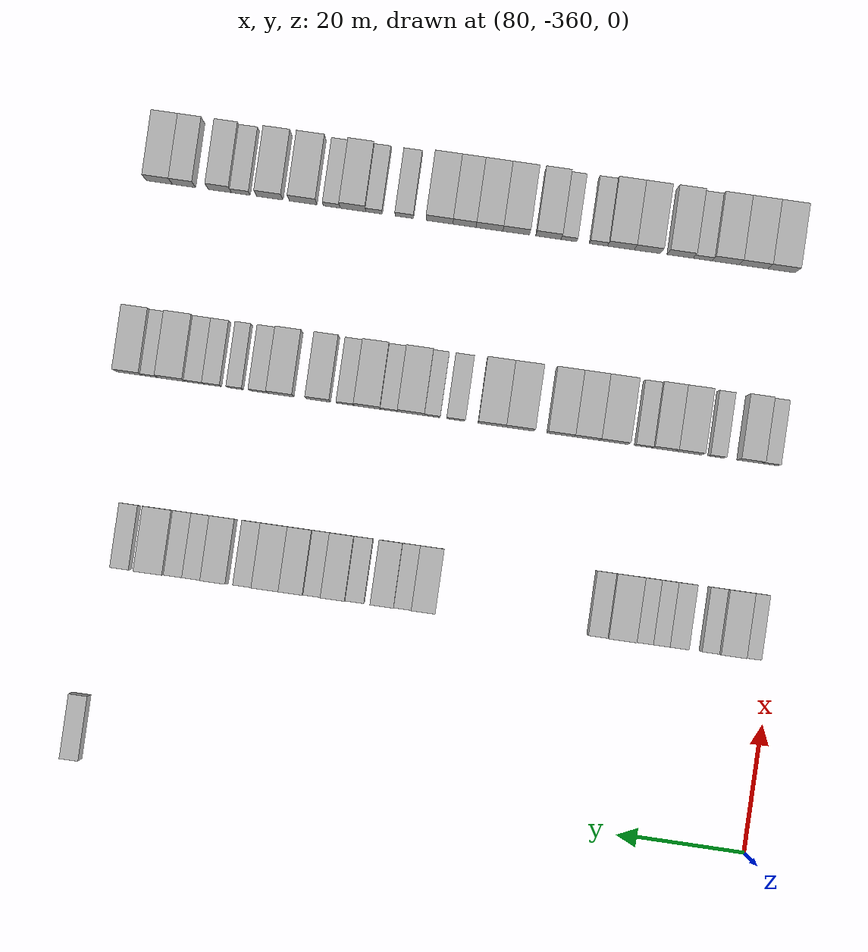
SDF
<sdf version="1.6">
 <world name="default">
  <model name="building_489">
   <static>1</static>
   <pose>85.0000 -255.1057 0 0.000000 0.000000 0.000000</pose>
   <link name="link">
    <pose>0 0 3.00 0 0 0</pose>
    <collision name="collision"><geometry><box><size>10.0000 2.9078 6.0000</size></box></geometry></collision>
    <visual name="visual">
     <cast_shadows>0</cast_shadows>
     <geometry><box><size>10.0000 2.9078 6.0000</size></box></geometry>
     <material>
      <script>
       <uri>model://HANNAS_wall/materials/scripts</uri>
       <uri>model://HANNAS_wall/materials/textures</uri>
       <name>vrc/HANNAS_wall</name>
      </script>
     </material>
    </visual>
   </link>
  </model>
  <model name="building_690">
   <static>1</static>
   <pose>115.0000 -356.5773 0 0.000000 0.000000 0.000000</pose>
   <link name="link">
    <pose>0 0 3.00 0 0 0</pose>
    <collision name="collision"><geometry><box><size>10.0000 2.5472 6.0000</size></box></geometry></collision>
    <visual name="visual">
     <cast_shadows>0</cast_shadows>
     <geometry><box><size>10.0000 2.5472 6.0000</size></box></geometry>
     <material>
      <script>
       <uri>model://HANNAS_wall/materials/scripts</uri>
       <uri>model://HANNAS_wall/materials/textures</uri>
       <name>vrc/HANNAS_wall</name>
      </script>
     </material>
    </visual>
   </link>
  </model>
  <model name="building_691">
   <static>1</static>
   <pose>115.0000 -353.3282 0 0.000000 0.000000 0.000000</pose>
   <link name="link">
    <pose>0 0 4.50 0 0 0</pose>
    <collision name="collision"><geometry><box><size>10.0000 3.9512 9.0000</size></box></geometry></collision>
    <visual name="visual">
     <cast_shadows>0</cast_shadows>
     <geometry><box><size>10.0000 3.9512 9.0000</size></box></geometry>
     <material>
      <script>
       <uri>model://HANNAS_wall/materials/scripts</uri>
       <uri>model://HANNAS_wall/materials/textures</uri>
       <name>vrc/HANNAS_wall</name>
      </script>
     </material>
    </visual>
   </link>
  </model>
  <model name="building_692">
   <static>1</static>
   <pose>115.0000 -350.0030 0 0.000000 0.000000 0.000000</pose>
   <link name="link">
    <pose>0 0 3.00 0 0 0</pose>
    <collision name="collision"><geometry><box><size>10.0000 2.6991 6.0000</size></box></geometry></collision>
    <visual name="visual">
     <cast_shadows>0</cast_shadows>
     <geometry><box><size>10.0000 2.6991 6.0000</size></box></geometry>
     <material>
      <script>
       <uri>model://HANNAS_wall/materials/scripts</uri>
       <uri>model://HANNAS_wall/materials/textures</uri>
       <name>vrc/HANNAS_wall</name>
      </script>
     </material>
    </visual>
   </link>
  </model>
  <model name="building_693">
   <static>1</static>
   <pose>115.0000 -345.1773 0 0.000000 0.000000 0.000000</pose>
   <link name="link">
    <pose>0 0 3.00 0 0 0</pose>
    <collision name="collision"><geometry><box><size>10.0000 2.9523 6.0000</size></box></geometry></collision>
    <visual name="visual">
     <cast_shadows>0</cast_shadows>
     <geometry><box><size>10.0000 2.9523 6.0000</size></box></geometry>
     <material>
      <script>
       <uri>model://HANNAS_wall/materials/scripts</uri>
       <uri>model://HANNAS_wall/materials/textures</uri>
       <name>vrc/HANNAS_wall</name>
      </script>
     </material>
    </visual>
   </link>
  </model>
  <model name="building_694">
   <static>1</static>
   <pose>115.0000 -342.4161 0 0.000000 0.000000 0.000000</pose>
   <link name="link">
    <pose>0 0 3.00 0 0 0</pose>
    <collision name="collision"><geometry><box><size>10.0000 2.5703 6.0000</size></box></geometry></collision>
    <visual name="visual">
     <cast_shadows>0</cast_shadows>
     <geometry><box><size>10.0000 2.5703 6.0000</size></box></geometry>
     <material>
      <script>
       <uri>model://HANNAS_wall/materials/scripts</uri>
       <uri>model://HANNAS_wall/materials/textures</uri>
       <name>vrc/HANNAS_wall</name>
      </script>
     </material>
    </visual>
   </link>
  </model>
  <model name="building_695">
   <static>1</static>
   <pose>115.0000 -339.7714 0 0.000000 0.000000 0.000000</pose>
   <link name="link">
    <pose>0 0 3.00 0 0 0</pose>
    <collision name="collision"><geometry><box><size>10.0000 2.7191 6.0000</size></box></geometry></collision>
    <visual name="visual">
     <cast_shadows>0</cast_shadows>
     <geometry><box><size>10.0000 2.7191 6.0000</size></box></geometry>
     <material>
      <script>
       <uri>model://HANNAS_wall/materials/scripts</uri>
       <uri>model://HANNAS_wall/materials/textures</uri>
       <name>vrc/HANNAS_wall</name>
      </script>
     </material>
    </visual>
   </link>
  </model>
  <model name="building_696">
   <static>1</static>
   <pose>115.0000 -336.2585 0 0.000000 0.000000 0.000000</pose>
   <link name="link">
    <pose>0 0 4.50 0 0 0</pose>
    <collision name="collision"><geometry><box><size>10.0000 4.3065 9.0000</size></box></geometry></collision>
    <visual name="visual">
     <cast_shadows>0</cast_shadows>
     <geometry><box><size>10.0000 4.3065 9.0000</size></box></geometry>
     <material>
      <script>
       <uri>model://HANNAS_wall/materials/scripts</uri>
       <uri>model://HANNAS_wall/materials/textures</uri>
       <name>vrc/HANNAS_wall</name>
      </script>
     </material>
    </visual>
   </link>
  </model>
  <model name="building_697">
   <static>1</static>
   <pose>115.0000 -332.6063 0 0.000000 0.000000 0.000000</pose>
   <link name="link">
    <pose>0 0 3.00 0 0 0</pose>
    <collision name="collision"><geometry><box><size>10.0000 2.9979 6.0000</size></box></geometry></collision>
    <visual name="visual">
     <cast_shadows>0</cast_shadows>
     <geometry><box><size>10.0000 2.9979 6.0000</size></box></geometry>
     <material>
      <script>
       <uri>model://HANNAS_wall/materials/scripts</uri>
       <uri>model://HANNAS_wall/materials/textures</uri>
       <name>vrc/HANNAS_wall</name>
      </script>
     </material>
    </visual>
   </link>
  </model>
  <model name="building_698">
   <static>1</static>
   <pose>115.0000 -305.5811 0 0.000000 0.000000 0.000000</pose>
   <link name="link">
    <pose>0 0 4.50 0 0 0</pose>
    <collision name="collision"><geometry><box><size>10.0000 3.6842 9.0000</size></box></geometry></collision>
    <visual name="visual">
     <cast_shadows>0</cast_shadows>
     <geometry><box><size>10.0000 3.6842 9.0000</size></box></geometry>
     <material>
      <script>
       <uri>model://HANNAS_wall/materials/scripts</uri>
       <uri>model://HANNAS_wall/materials/textures</uri>
       <name>vrc/HANNAS_wall</name>
      </script>
     </material>
    </visual>
   </link>
  </model>
  <model name="building_699">
   <static>1</static>
   <pose>115.0000 -302.3738 0 0.000000 0.000000 0.000000</pose>
   <link name="link">
    <pose>0 0 3.00 0 0 0</pose>
    <collision name="collision"><geometry><box><size>10.0000 2.7304 6.0000</size></box></geometry></collision>
    <visual name="visual">
     <cast_shadows>0</cast_shadows>
     <geometry><box><size>10.0000 2.7304 6.0000</size></box></geometry>
     <material>
      <script>
       <uri>model://HANNAS_wall/materials/scripts</uri>
       <uri>model://HANNAS_wall/materials/textures</uri>
       <name>vrc/HANNAS_wall</name>
      </script>
     </material>
    </visual>
   </link>
  </model>
  <model name="building_700">
   <static>1</static>
   <pose>115.0000 -299.2019 0 0.000000 0.000000 0.000000</pose>
   <link name="link">
    <pose>0 0 4.50 0 0 0</pose>
    <collision name="collision"><geometry><box><size>10.0000 3.6134 9.0000</size></box></geometry></collision>
    <visual name="visual">
     <cast_shadows>0</cast_shadows>
     <geometry><box><size>10.0000 3.6134 9.0000</size></box></geometry>
     <material>
      <script>
       <uri>model://HANNAS_wall/materials/scripts</uri>
       <uri>model://HANNAS_wall/materials/textures</uri>
       <name>vrc/HANNAS_wall</name>
      </script>
     </material>
    </visual>
   </link>
  </model>
  <model name="building_701">
   <static>1</static>
   <pose>115.0000 -294.9457 0 0.000000 0.000000 0.000000</pose>
   <link name="link">
    <pose>0 0 3.00 0 0 0</pose>
    <collision name="collision"><geometry><box><size>10.0000 2.8990 6.0000</size></box></geometry></collision>
    <visual name="visual">
     <cast_shadows>0</cast_shadows>
     <geometry><box><size>10.0000 2.8990 6.0000</size></box></geometry>
     <material>
      <script>
       <uri>model://HANNAS_wall/materials/scripts</uri>
       <uri>model://HANNAS_wall/materials/textures</uri>
       <name>vrc/HANNAS_wall</name>
      </script>
     </material>
    </visual>
   </link>
  </model>
  <model name="building_702">
   <static>1</static>
   <pose>115.0000 -291.6251 0 0.000000 0.000000 0.000000</pose>
   <link name="link">
    <pose>0 0 4.50 0 0 0</pose>
    <collision name="collision"><geometry><box><size>10.0000 3.7424 9.0000</size></box></geometry></collision>
    <visual name="visual">
     <cast_shadows>0</cast_shadows>
     <geometry><box><size>10.0000 3.7424 9.0000</size></box></geometry>
     <material>
      <script>
       <uri>model://HANNAS_wall/materials/scripts</uri>
       <uri>model://HANNAS_wall/materials/textures</uri>
       <name>vrc/HANNAS_wall</name>
      </script>
     </material>
    </visual>
   </link>
  </model>
  <model name="building_703">
   <static>1</static>
   <pose>115.0000 -288.3801 0 0.000000 0.000000 0.000000</pose>
   <link name="link">
    <pose>0 0 3.00 0 0 0</pose>
    <collision name="collision"><geometry><box><size>10.0000 2.7475 6.0000</size></box></geometry></collision>
    <visual name="visual">
     <cast_shadows>0</cast_shadows>
     <geometry><box><size>10.0000 2.7475 6.0000</size></box></geometry>
     <material>
      <script>
       <uri>model://HANNAS_wall/materials/scripts</uri>
       <uri>model://HANNAS_wall/materials/textures</uri>
       <name>vrc/HANNAS_wall</name>
      </script>
     </material>
    </visual>
   </link>
  </model>
  <model name="building_704">
   <static>1</static>
   <pose>115.0000 -285.1497 0 0.000000 0.000000 0.000000</pose>
   <link name="link">
    <pose>0 0 4.50 0 0 0</pose>
    <collision name="collision"><geometry><box><size>10.0000 3.7132 9.0000</size></box></geometry></collision>
    <visual name="visual">
     <cast_shadows>0</cast_shadows>
     <geometry><box><size>10.0000 3.7132 9.0000</size></box></geometry>
     <material>
      <script>
       <uri>model://HANNAS_wall/materials/scripts</uri>
       <uri>model://HANNAS_wall/materials/textures</uri>
       <name>vrc/HANNAS_wall</name>
      </script>
     </material>
    </visual>
   </link>
  </model>
  <model name="building_705">
   <static>1</static>
   <pose>115.0000 -281.2135 0 0.000000 0.000000 0.000000</pose>
   <link name="link">
    <pose>0 0 4.50 0 0 0</pose>
    <collision name="collision"><geometry><box><size>10.0000 4.1592 9.0000</size></box></geometry></collision>
    <visual name="visual">
     <cast_shadows>0</cast_shadows>
     <geometry><box><size>10.0000 4.1592 9.0000</size></box></geometry>
     <material>
      <script>
       <uri>model://HANNAS_wall/materials/scripts</uri>
       <uri>model://HANNAS_wall/materials/textures</uri>
       <name>vrc/HANNAS_wall</name>
      </script>
     </material>
    </visual>
   </link>
  </model>
  <model name="building_706">
   <static>1</static>
   <pose>115.0000 -277.6343 0 0.000000 0.000000 0.000000</pose>
   <link name="link">
    <pose>0 0 3.00 0 0 0</pose>
    <collision name="collision"><geometry><box><size>10.0000 2.9992 6.0000</size></box></geometry></collision>
    <visual name="visual">
     <cast_shadows>0</cast_shadows>
     <geometry><box><size>10.0000 2.9992 6.0000</size></box></geometry>
     <material>
      <script>
       <uri>model://HANNAS_wall/materials/scripts</uri>
       <uri>model://HANNAS_wall/materials/textures</uri>
       <name>vrc/HANNAS_wall</name>
      </script>
     </material>
    </visual>
   </link>
  </model>
  <model name="building_707">
   <static>1</static>
   <pose>115.0000 -273.2057 0 0.000000 0.000000 0.000000</pose>
   <link name="link">
    <pose>0 0 4.50 0 0 0</pose>
    <collision name="collision"><geometry><box><size>10.0000 3.8579 9.0000</size></box></geometry></collision>
    <visual name="visual">
     <cast_shadows>0</cast_shadows>
     <geometry><box><size>10.0000 3.8579 9.0000</size></box></geometry>
     <material>
      <script>
       <uri>model://HANNAS_wall/materials/scripts</uri>
       <uri>model://HANNAS_wall/materials/textures</uri>
       <name>vrc/HANNAS_wall</name>
      </script>
     </material>
    </visual>
   </link>
  </model>
  <model name="building_708">
   <static>1</static>
   <pose>115.0000 -269.7771 0 0.000000 0.000000 0.000000</pose>
   <link name="link">
    <pose>0 0 3.00 0 0 0</pose>
    <collision name="collision"><geometry><box><size>10.0000 2.9994 6.0000</size></box></geometry></collision>
    <visual name="visual">
     <cast_shadows>0</cast_shadows>
     <geometry><box><size>10.0000 2.9994 6.0000</size></box></geometry>
     <material>
      <script>
       <uri>model://HANNAS_wall/materials/scripts</uri>
       <uri>model://HANNAS_wall/materials/textures</uri>
       <name>vrc/HANNAS_wall</name>
      </script>
     </material>
    </visual>
   </link>
  </model>
  <model name="building_709">
   <static>1</static>
   <pose>115.0000 -266.8546 0 0.000000 0.000000 0.000000</pose>
   <link name="link">
    <pose>0 0 3.00 0 0 0</pose>
    <collision name="collision"><geometry><box><size>10.0000 2.8456 6.0000</size></box></geometry></collision>
    <visual name="visual">
     <cast_shadows>0</cast_shadows>
     <geometry><box><size>10.0000 2.8456 6.0000</size></box></geometry>
     <material>
      <script>
       <uri>model://HANNAS_wall/materials/scripts</uri>
       <uri>model://HANNAS_wall/materials/textures</uri>
       <name>vrc/HANNAS_wall</name>
      </script>
     </material>
    </visual>
   </link>
  </model>
  <model name="building_710">
   <static>1</static>
   <pose>115.0000 -263.2253 0 0.000000 0.000000 0.000000</pose>
   <link name="link">
    <pose>0 0 4.50 0 0 0</pose>
    <collision name="collision"><geometry><box><size>10.0000 4.4129 9.0000</size></box></geometry></collision>
    <visual name="visual">
     <cast_shadows>0</cast_shadows>
     <geometry><box><size>10.0000 4.4129 9.0000</size></box></geometry>
     <material>
      <script>
       <uri>model://HANNAS_wall/materials/scripts</uri>
       <uri>model://HANNAS_wall/materials/textures</uri>
       <name>vrc/HANNAS_wall</name>
      </script>
     </material>
    </visual>
   </link>
  </model>
  <model name="building_711">
   <static>1</static>
   <pose>115.0000 -258.5807 0 0.000000 0.000000 0.000000</pose>
   <link name="link">
    <pose>0 0 3.00 0 0 0</pose>
    <collision name="collision"><geometry><box><size>10.0000 2.8764 6.0000</size></box></geometry></collision>
    <visual name="visual">
     <cast_shadows>0</cast_shadows>
     <geometry><box><size>10.0000 2.8764 6.0000</size></box></geometry>
     <material>
      <script>
       <uri>model://HANNAS_wall/materials/scripts</uri>
       <uri>model://HANNAS_wall/materials/textures</uri>
       <name>vrc/HANNAS_wall</name>
      </script>
     </material>
    </visual>
   </link>
  </model>
  <model name="building_898">
   <static>1</static>
   <pose>145.0000 -355.3445 0 0.000000 0.000000 0.000000</pose>
   <link name="link">
    <pose>0 0 3.00 0 0 0</pose>
    <collision name="collision"><geometry><box><size>10.0000 2.6570 6.0000</size></box></geometry></collision>
    <visual name="visual">
     <cast_shadows>0</cast_shadows>
     <geometry><box><size>10.0000 2.6570 6.0000</size></box></geometry>
     <material>
      <script>
       <uri>model://HANNAS_wall/materials/scripts</uri>
       <uri>model://HANNAS_wall/materials/textures</uri>
       <name>vrc/HANNAS_wall</name>
      </script>
     </material>
    </visual>
   </link>
  </model>
  <model name="building_899">
   <static>1</static>
   <pose>145.0000 -352.1515 0 0.000000 0.000000 0.000000</pose>
   <link name="link">
    <pose>0 0 4.50 0 0 0</pose>
    <collision name="collision"><geometry><box><size>10.0000 3.7289 9.0000</size></box></geometry></collision>
    <visual name="visual">
     <cast_shadows>0</cast_shadows>
     <geometry><box><size>10.0000 3.7289 9.0000</size></box></geometry>
     <material>
      <script>
       <uri>model://HANNAS_wall/materials/scripts</uri>
       <uri>model://HANNAS_wall/materials/textures</uri>
       <name>vrc/HANNAS_wall</name>
      </script>
     </material>
    </visual>
   </link>
  </model>
  <model name="building_900">
   <static>1</static>
   <pose>145.0000 -347.0265 0 0.000000 0.000000 0.000000</pose>
   <link name="link">
    <pose>0 0 3.00 0 0 0</pose>
    <collision name="collision"><geometry><box><size>10.0000 2.5212 6.0000</size></box></geometry></collision>
    <visual name="visual">
     <cast_shadows>0</cast_shadows>
     <geometry><box><size>10.0000 2.5212 6.0000</size></box></geometry>
     <material>
      <script>
       <uri>model://HANNAS_wall/materials/scripts</uri>
       <uri>model://HANNAS_wall/materials/textures</uri>
       <name>vrc/HANNAS_wall</name>
      </script>
     </material>
    </visual>
   </link>
  </model>
  <model name="building_901">
   <static>1</static>
   <pose>145.0000 -342.7267 0 0.000000 0.000000 0.000000</pose>
   <link name="link">
    <pose>0 0 4.50 0 0 0</pose>
    <collision name="collision"><geometry><box><size>10.0000 4.0783 9.0000</size></box></geometry></collision>
    <visual name="visual">
     <cast_shadows>0</cast_shadows>
     <geometry><box><size>10.0000 4.0783 9.0000</size></box></geometry>
     <material>
      <script>
       <uri>model://HANNAS_wall/materials/scripts</uri>
       <uri>model://HANNAS_wall/materials/textures</uri>
       <name>vrc/HANNAS_wall</name>
      </script>
     </material>
    </visual>
   </link>
  </model>
  <model name="building_902">
   <static>1</static>
   <pose>145.0000 -338.8438 0 0.000000 0.000000 0.000000</pose>
   <link name="link">
    <pose>0 0 4.50 0 0 0</pose>
    <collision name="collision"><geometry><box><size>10.0000 3.6874 9.0000</size></box></geometry></collision>
    <visual name="visual">
     <cast_shadows>0</cast_shadows>
     <geometry><box><size>10.0000 3.6874 9.0000</size></box></geometry>
     <material>
      <script>
       <uri>model://HANNAS_wall/materials/scripts</uri>
       <uri>model://HANNAS_wall/materials/textures</uri>
       <name>vrc/HANNAS_wall</name>
      </script>
     </material>
    </visual>
   </link>
  </model>
  <model name="building_903">
   <static>1</static>
   <pose>145.0000 -335.6419 0 0.000000 0.000000 0.000000</pose>
   <link name="link">
    <pose>0 0 3.00 0 0 0</pose>
    <collision name="collision"><geometry><box><size>10.0000 2.7162 6.0000</size></box></geometry></collision>
    <visual name="visual">
     <cast_shadows>0</cast_shadows>
     <geometry><box><size>10.0000 2.7162 6.0000</size></box></geometry>
     <material>
      <script>
       <uri>model://HANNAS_wall/materials/scripts</uri>
       <uri>model://HANNAS_wall/materials/textures</uri>
       <name>vrc/HANNAS_wall</name>
      </script>
     </material>
    </visual>
   </link>
  </model>
  <model name="building_904">
   <static>1</static>
   <pose>145.0000 -331.0419 0 0.000000 0.000000 0.000000</pose>
   <link name="link">
    <pose>0 0 4.50 0 0 0</pose>
    <collision name="collision"><geometry><box><size>10.0000 4.4839 9.0000</size></box></geometry></collision>
    <visual name="visual">
     <cast_shadows>0</cast_shadows>
     <geometry><box><size>10.0000 4.4839 9.0000</size></box></geometry>
     <material>
      <script>
       <uri>model://HANNAS_wall/materials/scripts</uri>
       <uri>model://HANNAS_wall/materials/textures</uri>
       <name>vrc/HANNAS_wall</name>
      </script>
     </material>
    </visual>
   </link>
  </model>
  <model name="building_905">
   <static>1</static>
   <pose>145.0000 -326.7968 0 0.000000 0.000000 0.000000</pose>
   <link name="link">
    <pose>0 0 4.50 0 0 0</pose>
    <collision name="collision"><geometry><box><size>10.0000 4.0063 9.0000</size></box></geometry></collision>
    <visual name="visual">
     <cast_shadows>0</cast_shadows>
     <geometry><box><size>10.0000 4.0063 9.0000</size></box></geometry>
     <material>
      <script>
       <uri>model://HANNAS_wall/materials/scripts</uri>
       <uri>model://HANNAS_wall/materials/textures</uri>
       <name>vrc/HANNAS_wall</name>
      </script>
     </material>
    </visual>
   </link>
  </model>
  <model name="building_906">
   <static>1</static>
   <pose>145.0000 -322.7054 0 0.000000 0.000000 0.000000</pose>
   <link name="link">
    <pose>0 0 4.50 0 0 0</pose>
    <collision name="collision"><geometry><box><size>10.0000 4.1765 9.0000</size></box></geometry></collision>
    <visual name="visual">
     <cast_shadows>0</cast_shadows>
     <geometry><box><size>10.0000 4.1765 9.0000</size></box></geometry>
     <material>
      <script>
       <uri>model://HANNAS_wall/materials/scripts</uri>
       <uri>model://HANNAS_wall/materials/textures</uri>
       <name>vrc/HANNAS_wall</name>
      </script>
     </material>
    </visual>
   </link>
  </model>
  <model name="building_907">
   <static>1</static>
   <pose>145.0000 -316.3937 0 0.000000 0.000000 0.000000</pose>
   <link name="link">
    <pose>0 0 4.50 0 0 0</pose>
    <collision name="collision"><geometry><box><size>10.0000 4.4470 9.0000</size></box></geometry></collision>
    <visual name="visual">
     <cast_shadows>0</cast_shadows>
     <geometry><box><size>10.0000 4.4470 9.0000</size></box></geometry>
     <material>
      <script>
       <uri>model://HANNAS_wall/materials/scripts</uri>
       <uri>model://HANNAS_wall/materials/textures</uri>
       <name>vrc/HANNAS_wall</name>
      </script>
     </material>
    </visual>
   </link>
  </model>
  <model name="building_908">
   <static>1</static>
   <pose>145.0000 -312.0126 0 0.000000 0.000000 0.000000</pose>
   <link name="link">
    <pose>0 0 4.50 0 0 0</pose>
    <collision name="collision"><geometry><box><size>10.0000 4.3151 9.0000</size></box></geometry></collision>
    <visual name="visual">
     <cast_shadows>0</cast_shadows>
     <geometry><box><size>10.0000 4.3151 9.0000</size></box></geometry>
     <material>
      <script>
       <uri>model://HANNAS_wall/materials/scripts</uri>
       <uri>model://HANNAS_wall/materials/textures</uri>
       <name>vrc/HANNAS_wall</name>
      </script>
     </material>
    </visual>
   </link>
  </model>
  <model name="building_909">
   <static>1</static>
   <pose>145.0000 -306.4045 0 0.000000 0.000000 0.000000</pose>
   <link name="link">
    <pose>0 0 3.00 0 0 0</pose>
    <collision name="collision"><geometry><box><size>10.0000 2.9011 6.0000</size></box></geometry></collision>
    <visual name="visual">
     <cast_shadows>0</cast_shadows>
     <geometry><box><size>10.0000 2.9011 6.0000</size></box></geometry>
     <material>
      <script>
       <uri>model://HANNAS_wall/materials/scripts</uri>
       <uri>model://HANNAS_wall/materials/textures</uri>
       <name>vrc/HANNAS_wall</name>
      </script>
     </material>
    </visual>
   </link>
  </model>
  <model name="building_910">
   <static>1</static>
   <pose>145.0000 -302.7362 0 0.000000 0.000000 0.000000</pose>
   <link name="link">
    <pose>0 0 3.00 0 0 0</pose>
    <collision name="collision"><geometry><box><size>10.0000 2.4355 6.0000</size></box></geometry></collision>
    <visual name="visual">
     <cast_shadows>0</cast_shadows>
     <geometry><box><size>10.0000 2.4355 6.0000</size></box></geometry>
     <material>
      <script>
       <uri>model://HANNAS_wall/materials/scripts</uri>
       <uri>model://HANNAS_wall/materials/textures</uri>
       <name>vrc/HANNAS_wall</name>
      </script>
     </material>
    </visual>
   </link>
  </model>
  <model name="building_911">
   <static>1</static>
   <pose>145.0000 -299.4202 0 0.000000 0.000000 0.000000</pose>
   <link name="link">
    <pose>0 0 4.50 0 0 0</pose>
    <collision name="collision"><geometry><box><size>10.0000 4.1965 9.0000</size></box></geometry></collision>
    <visual name="visual">
     <cast_shadows>0</cast_shadows>
     <geometry><box><size>10.0000 4.1965 9.0000</size></box></geometry>
     <material>
      <script>
       <uri>model://HANNAS_wall/materials/scripts</uri>
       <uri>model://HANNAS_wall/materials/textures</uri>
       <name>vrc/HANNAS_wall</name>
      </script>
     </material>
    </visual>
   </link>
  </model>
  <model name="building_912">
   <static>1</static>
   <pose>145.0000 -295.9853 0 0.000000 0.000000 0.000000</pose>
   <link name="link">
    <pose>0 0 3.00 0 0 0</pose>
    <collision name="collision"><geometry><box><size>10.0000 2.6733 6.0000</size></box></geometry></collision>
    <visual name="visual">
     <cast_shadows>0</cast_shadows>
     <geometry><box><size>10.0000 2.6733 6.0000</size></box></geometry>
     <material>
      <script>
       <uri>model://HANNAS_wall/materials/scripts</uri>
       <uri>model://HANNAS_wall/materials/textures</uri>
       <name>vrc/HANNAS_wall</name>
      </script>
     </material>
    </visual>
   </link>
  </model>
  <model name="building_913">
   <static>1</static>
   <pose>145.0000 -292.6011 0 0.000000 0.000000 0.000000</pose>
   <link name="link">
    <pose>0 0 4.50 0 0 0</pose>
    <collision name="collision"><geometry><box><size>10.0000 4.0950 9.0000</size></box></geometry></collision>
    <visual name="visual">
     <cast_shadows>0</cast_shadows>
     <geometry><box><size>10.0000 4.0950 9.0000</size></box></geometry>
     <material>
      <script>
       <uri>model://HANNAS_wall/materials/scripts</uri>
       <uri>model://HANNAS_wall/materials/textures</uri>
       <name>vrc/HANNAS_wall</name>
      </script>
     </material>
    </visual>
   </link>
  </model>
  <model name="building_914">
   <static>1</static>
   <pose>145.0000 -289.1870 0 0.000000 0.000000 0.000000</pose>
   <link name="link">
    <pose>0 0 3.00 0 0 0</pose>
    <collision name="collision"><geometry><box><size>10.0000 2.7332 6.0000</size></box></geometry></collision>
    <visual name="visual">
     <cast_shadows>0</cast_shadows>
     <geometry><box><size>10.0000 2.7332 6.0000</size></box></geometry>
     <material>
      <script>
       <uri>model://HANNAS_wall/materials/scripts</uri>
       <uri>model://HANNAS_wall/materials/textures</uri>
       <name>vrc/HANNAS_wall</name>
      </script>
     </material>
    </visual>
   </link>
  </model>
  <model name="building_915">
   <static>1</static>
   <pose>145.0000 -284.9626 0 0.000000 0.000000 0.000000</pose>
   <link name="link">
    <pose>0 0 4.50 0 0 0</pose>
    <collision name="collision"><geometry><box><size>10.0000 3.7156 9.0000</size></box></geometry></collision>
    <visual name="visual">
     <cast_shadows>0</cast_shadows>
     <geometry><box><size>10.0000 3.7156 9.0000</size></box></geometry>
     <material>
      <script>
       <uri>model://HANNAS_wall/materials/scripts</uri>
       <uri>model://HANNAS_wall/materials/textures</uri>
       <name>vrc/HANNAS_wall</name>
      </script>
     </material>
    </visual>
   </link>
  </model>
  <model name="building_916">
   <static>1</static>
   <pose>145.0000 -279.0987 0 0.000000 0.000000 0.000000</pose>
   <link name="link">
    <pose>0 0 4.50 0 0 0</pose>
    <collision name="collision"><geometry><box><size>10.0000 4.0124 9.0000</size></box></geometry></collision>
    <visual name="visual">
     <cast_shadows>0</cast_shadows>
     <geometry><box><size>10.0000 4.0124 9.0000</size></box></geometry>
     <material>
      <script>
       <uri>model://HANNAS_wall/materials/scripts</uri>
       <uri>model://HANNAS_wall/materials/textures</uri>
       <name>vrc/HANNAS_wall</name>
      </script>
     </material>
    </visual>
   </link>
  </model>
  <model name="building_917">
   <static>1</static>
   <pose>145.0000 -275.6533 0 0.000000 0.000000 0.000000</pose>
   <link name="link">
    <pose>0 0 3.00 0 0 0</pose>
    <collision name="collision"><geometry><box><size>10.0000 2.8783 6.0000</size></box></geometry></collision>
    <visual name="visual">
     <cast_shadows>0</cast_shadows>
     <geometry><box><size>10.0000 2.8783 6.0000</size></box></geometry>
     <material>
      <script>
       <uri>model://HANNAS_wall/materials/scripts</uri>
       <uri>model://HANNAS_wall/materials/textures</uri>
       <name>vrc/HANNAS_wall</name>
      </script>
     </material>
    </visual>
   </link>
  </model>
  <model name="building_918">
   <static>1</static>
   <pose>145.0000 -272.0071 0 0.000000 0.000000 0.000000</pose>
   <link name="link">
    <pose>0 0 3.00 0 0 0</pose>
    <collision name="collision"><geometry><box><size>10.0000 2.4142 6.0000</size></box></geometry></collision>
    <visual name="visual">
     <cast_shadows>0</cast_shadows>
     <geometry><box><size>10.0000 2.4142 6.0000</size></box></geometry>
     <material>
      <script>
       <uri>model://HANNAS_wall/materials/scripts</uri>
       <uri>model://HANNAS_wall/materials/textures</uri>
       <name>vrc/HANNAS_wall</name>
      </script>
     </material>
    </visual>
   </link>
  </model>
  <model name="building_919">
   <static>1</static>
   <pose>145.0000 -268.4107 0 0.000000 0.000000 0.000000</pose>
   <link name="link">
    <pose>0 0 3.00 0 0 0</pose>
    <collision name="collision"><geometry><box><size>10.0000 2.7787 6.0000</size></box></geometry></collision>
    <visual name="visual">
     <cast_shadows>0</cast_shadows>
     <geometry><box><size>10.0000 2.7787 6.0000</size></box></geometry>
     <material>
      <script>
       <uri>model://HANNAS_wall/materials/scripts</uri>
       <uri>model://HANNAS_wall/materials/textures</uri>
       <name>vrc/HANNAS_wall</name>
      </script>
     </material>
    </visual>
   </link>
  </model>
  <model name="building_920">
   <static>1</static>
   <pose>145.0000 -265.6202 0 0.000000 0.000000 0.000000</pose>
   <link name="link">
    <pose>0 0 3.00 0 0 0</pose>
    <collision name="collision"><geometry><box><size>10.0000 2.8023 6.0000</size></box></geometry></collision>
    <visual name="visual">
     <cast_shadows>0</cast_shadows>
     <geometry><box><size>10.0000 2.8023 6.0000</size></box></geometry>
     <material>
      <script>
       <uri>model://HANNAS_wall/materials/scripts</uri>
       <uri>model://HANNAS_wall/materials/textures</uri>
       <name>vrc/HANNAS_wall</name>
      </script>
     </material>
    </visual>
   </link>
  </model>
  <model name="building_921">
   <static>1</static>
   <pose>145.0000 -262.0906 0 0.000000 0.000000 0.000000</pose>
   <link name="link">
    <pose>0 0 4.50 0 0 0</pose>
    <collision name="collision"><geometry><box><size>10.0000 4.2570 9.0000</size></box></geometry></collision>
    <visual name="visual">
     <cast_shadows>0</cast_shadows>
     <geometry><box><size>10.0000 4.2570 9.0000</size></box></geometry>
     <material>
      <script>
       <uri>model://HANNAS_wall/materials/scripts</uri>
       <uri>model://HANNAS_wall/materials/textures</uri>
       <name>vrc/HANNAS_wall</name>
      </script>
     </material>
    </visual>
   </link>
  </model>
  <model name="building_922">
   <static>1</static>
   <pose>145.0000 -258.7361 0 0.000000 0.000000 0.000000</pose>
   <link name="link">
    <pose>0 0 3.00 0 0 0</pose>
    <collision name="collision"><geometry><box><size>10.0000 2.4520 6.0000</size></box></geometry></collision>
    <visual name="visual">
     <cast_shadows>0</cast_shadows>
     <geometry><box><size>10.0000 2.4520 6.0000</size></box></geometry>
     <material>
      <script>
       <uri>model://HANNAS_wall/materials/scripts</uri>
       <uri>model://HANNAS_wall/materials/textures</uri>
       <name>vrc/HANNAS_wall</name>
      </script>
     </material>
    </visual>
   </link>
  </model>
  <model name="building_923">
   <static>1</static>
   <pose>145.0000 -255.4666 0 0.000000 0.000000 0.000000</pose>
   <link name="link">
    <pose>0 0 4.50 0 0 0</pose>
    <collision name="collision"><geometry><box><size>10.0000 4.0872 9.0000</size></box></geometry></collision>
    <visual name="visual">
     <cast_shadows>0</cast_shadows>
     <geometry><box><size>10.0000 4.0872 9.0000</size></box></geometry>
     <material>
      <script>
       <uri>model://HANNAS_wall/materials/scripts</uri>
       <uri>model://HANNAS_wall/materials/textures</uri>
       <name>vrc/HANNAS_wall</name>
      </script>
     </material>
    </visual>
   </link>
  </model>
  <model name="building_1131">
   <static>1</static>
   <pose>175.0000 -353.0749 0 0.000000 0.000000 0.000000</pose>
   <link name="link">
    <pose>0 0 4.50 0 0 0</pose>
    <collision name="collision"><geometry><box><size>10.0000 4.3313 9.0000</size></box></geometry></collision>
    <visual name="visual">
     <cast_shadows>0</cast_shadows>
     <geometry><box><size>10.0000 4.3313 9.0000</size></box></geometry>
     <material>
      <script>
       <uri>model://HANNAS_wall/materials/scripts</uri>
       <uri>model://HANNAS_wall/materials/textures</uri>
       <name>vrc/HANNAS_wall</name>
      </script>
     </material>
    </visual>
   </link>
  </model>
  <model name="building_1132">
   <static>1</static>
   <pose>175.0000 -348.6669 0 0.000000 0.000000 0.000000</pose>
   <link name="link">
    <pose>0 0 4.50 0 0 0</pose>
    <collision name="collision"><geometry><box><size>10.0000 4.4848 9.0000</size></box></geometry></collision>
    <visual name="visual">
     <cast_shadows>0</cast_shadows>
     <geometry><box><size>10.0000 4.4848 9.0000</size></box></geometry>
     <material>
      <script>
       <uri>model://HANNAS_wall/materials/scripts</uri>
       <uri>model://HANNAS_wall/materials/textures</uri>
       <name>vrc/HANNAS_wall</name>
      </script>
     </material>
    </visual>
   </link>
  </model>
  <model name="building_1133">
   <static>1</static>
   <pose>175.0000 -344.3088 0 0.000000 0.000000 0.000000</pose>
   <link name="link">
    <pose>0 0 4.50 0 0 0</pose>
    <collision name="collision"><geometry><box><size>10.0000 4.2315 9.0000</size></box></geometry></collision>
    <visual name="visual">
     <cast_shadows>0</cast_shadows>
     <geometry><box><size>10.0000 4.2315 9.0000</size></box></geometry>
     <material>
      <script>
       <uri>model://HANNAS_wall/materials/scripts</uri>
       <uri>model://HANNAS_wall/materials/textures</uri>
       <name>vrc/HANNAS_wall</name>
      </script>
     </material>
    </visual>
   </link>
  </model>
  <model name="building_1134">
   <static>1</static>
   <pose>175.0000 -340.7167 0 0.000000 0.000000 0.000000</pose>
   <link name="link">
    <pose>0 0 3.00 0 0 0</pose>
    <collision name="collision"><geometry><box><size>10.0000 2.9527 6.0000</size></box></geometry></collision>
    <visual name="visual">
     <cast_shadows>0</cast_shadows>
     <geometry><box><size>10.0000 2.9527 6.0000</size></box></geometry>
     <material>
      <script>
       <uri>model://HANNAS_wall/materials/scripts</uri>
       <uri>model://HANNAS_wall/materials/textures</uri>
       <name>vrc/HANNAS_wall</name>
      </script>
     </material>
    </visual>
   </link>
  </model>
  <model name="building_1135">
   <static>1</static>
   <pose>175.0000 -337.1962 0 0.000000 0.000000 0.000000</pose>
   <link name="link">
    <pose>0 0 4.50 0 0 0</pose>
    <collision name="collision"><geometry><box><size>10.0000 4.0882 9.0000</size></box></geometry></collision>
    <visual name="visual">
     <cast_shadows>0</cast_shadows>
     <geometry><box><size>10.0000 4.0882 9.0000</size></box></geometry>
     <material>
      <script>
       <uri>model://HANNAS_wall/materials/scripts</uri>
       <uri>model://HANNAS_wall/materials/textures</uri>
       <name>vrc/HANNAS_wall</name>
      </script>
     </material>
    </visual>
   </link>
  </model>
  <model name="building_1136">
   <static>1</static>
   <pose>175.0000 -332.0841 0 0.000000 0.000000 0.000000</pose>
   <link name="link">
    <pose>0 0 4.50 0 0 0</pose>
    <collision name="collision"><geometry><box><size>10.0000 4.1359 9.0000</size></box></geometry></collision>
    <visual name="visual">
     <cast_shadows>0</cast_shadows>
     <geometry><box><size>10.0000 4.1359 9.0000</size></box></geometry>
     <material>
      <script>
       <uri>model://HANNAS_wall/materials/scripts</uri>
       <uri>model://HANNAS_wall/materials/textures</uri>
       <name>vrc/HANNAS_wall</name>
      </script>
     </material>
    </visual>
   </link>
  </model>
  <model name="building_1137">
   <static>1</static>
   <pose>175.0000 -327.9242 0 0.000000 0.000000 0.000000</pose>
   <link name="link">
    <pose>0 0 4.50 0 0 0</pose>
    <collision name="collision"><geometry><box><size>10.0000 4.1838 9.0000</size></box></geometry></collision>
    <visual name="visual">
     <cast_shadows>0</cast_shadows>
     <geometry><box><size>10.0000 4.1838 9.0000</size></box></geometry>
     <material>
      <script>
       <uri>model://HANNAS_wall/materials/scripts</uri>
       <uri>model://HANNAS_wall/materials/textures</uri>
       <name>vrc/HANNAS_wall</name>
      </script>
     </material>
    </visual>
   </link>
  </model>
  <model name="building_1138">
   <static>1</static>
   <pose>175.0000 -324.4249 0 0.000000 0.000000 0.000000</pose>
   <link name="link">
    <pose>0 0 3.00 0 0 0</pose>
    <collision name="collision"><geometry><box><size>10.0000 2.8149 6.0000</size></box></geometry></collision>
    <visual name="visual">
     <cast_shadows>0</cast_shadows>
     <geometry><box><size>10.0000 2.8149 6.0000</size></box></geometry>
     <material>
      <script>
       <uri>model://HANNAS_wall/materials/scripts</uri>
       <uri>model://HANNAS_wall/materials/textures</uri>
       <name>vrc/HANNAS_wall</name>
      </script>
     </material>
    </visual>
   </link>
  </model>
  <model name="building_1139">
   <static>1</static>
   <pose>175.0000 -319.7954 0 0.000000 0.000000 0.000000</pose>
   <link name="link">
    <pose>0 0 3.00 0 0 0</pose>
    <collision name="collision"><geometry><box><size>10.0000 2.4441 6.0000</size></box></geometry></collision>
    <visual name="visual">
     <cast_shadows>0</cast_shadows>
     <geometry><box><size>10.0000 2.4441 6.0000</size></box></geometry>
     <material>
      <script>
       <uri>model://HANNAS_wall/materials/scripts</uri>
       <uri>model://HANNAS_wall/materials/textures</uri>
       <name>vrc/HANNAS_wall</name>
      </script>
     </material>
    </visual>
   </link>
  </model>
  <model name="building_1140">
   <static>1</static>
   <pose>175.0000 -316.6050 0 0.000000 0.000000 0.000000</pose>
   <link name="link">
    <pose>0 0 4.50 0 0 0</pose>
    <collision name="collision"><geometry><box><size>10.0000 3.9368 9.0000</size></box></geometry></collision>
    <visual name="visual">
     <cast_shadows>0</cast_shadows>
     <geometry><box><size>10.0000 3.9368 9.0000</size></box></geometry>
     <material>
      <script>
       <uri>model://HANNAS_wall/materials/scripts</uri>
       <uri>model://HANNAS_wall/materials/textures</uri>
       <name>vrc/HANNAS_wall</name>
      </script>
     </material>
    </visual>
   </link>
  </model>
  <model name="building_1141">
   <static>1</static>
   <pose>175.0000 -311.5578 0 0.000000 0.000000 0.000000</pose>
   <link name="link">
    <pose>0 0 4.50 0 0 0</pose>
    <collision name="collision"><geometry><box><size>10.0000 4.1577 9.0000</size></box></geometry></collision>
    <visual name="visual">
     <cast_shadows>0</cast_shadows>
     <geometry><box><size>10.0000 4.1577 9.0000</size></box></geometry>
     <material>
      <script>
       <uri>model://HANNAS_wall/materials/scripts</uri>
       <uri>model://HANNAS_wall/materials/textures</uri>
       <name>vrc/HANNAS_wall</name>
      </script>
     </material>
    </visual>
   </link>
  </model>
  <model name="building_1142">
   <static>1</static>
   <pose>175.0000 -307.3981 0 0.000000 0.000000 0.000000</pose>
   <link name="link">
    <pose>0 0 4.50 0 0 0</pose>
    <collision name="collision"><geometry><box><size>10.0000 4.1616 9.0000</size></box></geometry></collision>
    <visual name="visual">
     <cast_shadows>0</cast_shadows>
     <geometry><box><size>10.0000 4.1616 9.0000</size></box></geometry>
     <material>
      <script>
       <uri>model://HANNAS_wall/materials/scripts</uri>
       <uri>model://HANNAS_wall/materials/textures</uri>
       <name>vrc/HANNAS_wall</name>
      </script>
     </material>
    </visual>
   </link>
  </model>
  <model name="building_1143">
   <static>1</static>
   <pose>175.0000 -303.5077 0 0.000000 0.000000 0.000000</pose>
   <link name="link">
    <pose>0 0 4.50 0 0 0</pose>
    <collision name="collision"><geometry><box><size>10.0000 3.6193 9.0000</size></box></geometry></collision>
    <visual name="visual">
     <cast_shadows>0</cast_shadows>
     <geometry><box><size>10.0000 3.6193 9.0000</size></box></geometry>
     <material>
      <script>
       <uri>model://HANNAS_wall/materials/scripts</uri>
       <uri>model://HANNAS_wall/materials/textures</uri>
       <name>vrc/HANNAS_wall</name>
      </script>
     </material>
    </visual>
   </link>
  </model>
  <model name="building_1144">
   <static>1</static>
   <pose>175.0000 -299.6024 0 0.000000 0.000000 0.000000</pose>
   <link name="link">
    <pose>0 0 4.50 0 0 0</pose>
    <collision name="collision"><geometry><box><size>10.0000 4.1913 9.0000</size></box></geometry></collision>
    <visual name="visual">
     <cast_shadows>0</cast_shadows>
     <geometry><box><size>10.0000 4.1913 9.0000</size></box></geometry>
     <material>
      <script>
       <uri>model://HANNAS_wall/materials/scripts</uri>
       <uri>model://HANNAS_wall/materials/textures</uri>
       <name>vrc/HANNAS_wall</name>
      </script>
     </material>
    </visual>
   </link>
  </model>
  <model name="building_1145">
   <static>1</static>
   <pose>175.0000 -294.0769 0 0.000000 0.000000 0.000000</pose>
   <link name="link">
    <pose>0 0 3.00 0 0 0</pose>
    <collision name="collision"><geometry><box><size>10.0000 2.8596 6.0000</size></box></geometry></collision>
    <visual name="visual">
     <cast_shadows>0</cast_shadows>
     <geometry><box><size>10.0000 2.8596 6.0000</size></box></geometry>
     <material>
      <script>
       <uri>model://HANNAS_wall/materials/scripts</uri>
       <uri>model://HANNAS_wall/materials/textures</uri>
       <name>vrc/HANNAS_wall</name>
      </script>
     </material>
    </visual>
   </link>
  </model>
  <model name="building_1146">
   <static>1</static>
   <pose>175.0000 -289.3535 0 0.000000 0.000000 0.000000</pose>
   <link name="link">
    <pose>0 0 3.00 0 0 0</pose>
    <collision name="collision"><geometry><box><size>10.0000 2.5872 6.0000</size></box></geometry></collision>
    <visual name="visual">
     <cast_shadows>0</cast_shadows>
     <geometry><box><size>10.0000 2.5872 6.0000</size></box></geometry>
     <material>
      <script>
       <uri>model://HANNAS_wall/materials/scripts</uri>
       <uri>model://HANNAS_wall/materials/textures</uri>
       <name>vrc/HANNAS_wall</name>
      </script>
     </material>
    </visual>
   </link>
  </model>
  <model name="building_1147">
   <static>1</static>
   <pose>175.0000 -286.0506 0 0.000000 0.000000 0.000000</pose>
   <link name="link">
    <pose>0 0 4.50 0 0 0</pose>
    <collision name="collision"><geometry><box><size>10.0000 4.0185 9.0000</size></box></geometry></collision>
    <visual name="visual">
     <cast_shadows>0</cast_shadows>
     <geometry><box><size>10.0000 4.0185 9.0000</size></box></geometry>
     <material>
      <script>
       <uri>model://HANNAS_wall/materials/scripts</uri>
       <uri>model://HANNAS_wall/materials/textures</uri>
       <name>vrc/HANNAS_wall</name>
      </script>
     </material>
    </visual>
   </link>
  </model>
  <model name="building_1148">
   <static>1</static>
   <pose>175.0000 -282.7335 0 0.000000 0.000000 0.000000</pose>
   <link name="link">
    <pose>0 0 3.00 0 0 0</pose>
    <collision name="collision"><geometry><box><size>10.0000 2.6157 6.0000</size></box></geometry></collision>
    <visual name="visual">
     <cast_shadows>0</cast_shadows>
     <geometry><box><size>10.0000 2.6157 6.0000</size></box></geometry>
     <material>
      <script>
       <uri>model://HANNAS_wall/materials/scripts</uri>
       <uri>model://HANNAS_wall/materials/textures</uri>
       <name>vrc/HANNAS_wall</name>
      </script>
     </material>
    </visual>
   </link>
  </model>
  <model name="building_1149">
   <static>1</static>
   <pose>175.0000 -278.2657 0 0.000000 0.000000 0.000000</pose>
   <link name="link">
    <pose>0 0 4.50 0 0 0</pose>
    <collision name="collision"><geometry><box><size>10.0000 4.3199 9.0000</size></box></geometry></collision>
    <visual name="visual">
     <cast_shadows>0</cast_shadows>
     <geometry><box><size>10.0000 4.3199 9.0000</size></box></geometry>
     <material>
      <script>
       <uri>model://HANNAS_wall/materials/scripts</uri>
       <uri>model://HANNAS_wall/materials/textures</uri>
       <name>vrc/HANNAS_wall</name>
      </script>
     </material>
    </visual>
   </link>
  </model>
  <model name="building_1150">
   <static>1</static>
   <pose>175.0000 -273.0421 0 0.000000 0.000000 0.000000</pose>
   <link name="link">
    <pose>0 0 4.50 0 0 0</pose>
    <collision name="collision"><geometry><box><size>10.0000 4.1275 9.0000</size></box></geometry></collision>
    <visual name="visual">
     <cast_shadows>0</cast_shadows>
     <geometry><box><size>10.0000 4.1275 9.0000</size></box></geometry>
     <material>
      <script>
       <uri>model://HANNAS_wall/materials/scripts</uri>
       <uri>model://HANNAS_wall/materials/textures</uri>
       <name>vrc/HANNAS_wall</name>
      </script>
     </material>
    </visual>
   </link>
  </model>
  <model name="building_1151">
   <static>1</static>
   <pose>175.0000 -268.5157 0 0.000000 0.000000 0.000000</pose>
   <link name="link">
    <pose>0 0 3.00 0 0 0</pose>
    <collision name="collision"><geometry><box><size>10.0000 2.9252 6.0000</size></box></geometry></collision>
    <visual name="visual">
     <cast_shadows>0</cast_shadows>
     <geometry><box><size>10.0000 2.9252 6.0000</size></box></geometry>
     <material>
      <script>
       <uri>model://HANNAS_wall/materials/scripts</uri>
       <uri>model://HANNAS_wall/materials/textures</uri>
       <name>vrc/HANNAS_wall</name>
      </script>
     </material>
    </visual>
   </link>
  </model>
  <model name="building_1152">
   <static>1</static>
   <pose>175.0000 -265.2465 0 0.000000 0.000000 0.000000</pose>
   <link name="link">
    <pose>0 0 4.50 0 0 0</pose>
    <collision name="collision"><geometry><box><size>10.0000 3.6133 9.0000</size></box></geometry></collision>
    <visual name="visual">
     <cast_shadows>0</cast_shadows>
     <geometry><box><size>10.0000 3.6133 9.0000</size></box></geometry>
     <material>
      <script>
       <uri>model://HANNAS_wall/materials/scripts</uri>
       <uri>model://HANNAS_wall/materials/textures</uri>
       <name>vrc/HANNAS_wall</name>
      </script>
     </material>
    </visual>
   </link>
  </model>
  <model name="building_1153">
   <static>1</static>
   <pose>175.0000 -259.6265 0 0.000000 0.000000 0.000000</pose>
   <link name="link">
    <pose>0 0 4.50 0 0 0</pose>
    <collision name="collision"><geometry><box><size>10.0000 3.6267 9.0000</size></box></geometry></collision>
    <visual name="visual">
     <cast_shadows>0</cast_shadows>
     <geometry><box><size>10.0000 3.6267 9.0000</size></box></geometry>
     <material>
      <script>
       <uri>model://HANNAS_wall/materials/scripts</uri>
       <uri>model://HANNAS_wall/materials/textures</uri>
       <name>vrc/HANNAS_wall</name>
      </script>
     </material>
    </visual>
   </link>
  </model>
  <model name="building_1154">
   <static>1</static>
   <pose>175.0000 -255.7773 0 0.000000 0.000000 0.000000</pose>
   <link name="link">
    <pose>0 0 4.50 0 0 0</pose>
    <collision name="collision"><geometry><box><size>10.0000 4.0716 9.0000</size></box></geometry></collision>
    <visual name="visual">
     <cast_shadows>0</cast_shadows>
     <geometry><box><size>10.0000 4.0716 9.0000</size></box></geometry>
     <material>
      <script>
       <uri>model://HANNAS_wall/materials/scripts</uri>
       <uri>model://HANNAS_wall/materials/textures</uri>
       <name>vrc/HANNAS_wall</name>
      </script>
     </material>
    </visual>
   </link>
  </model>
 </world>
</sdf>
